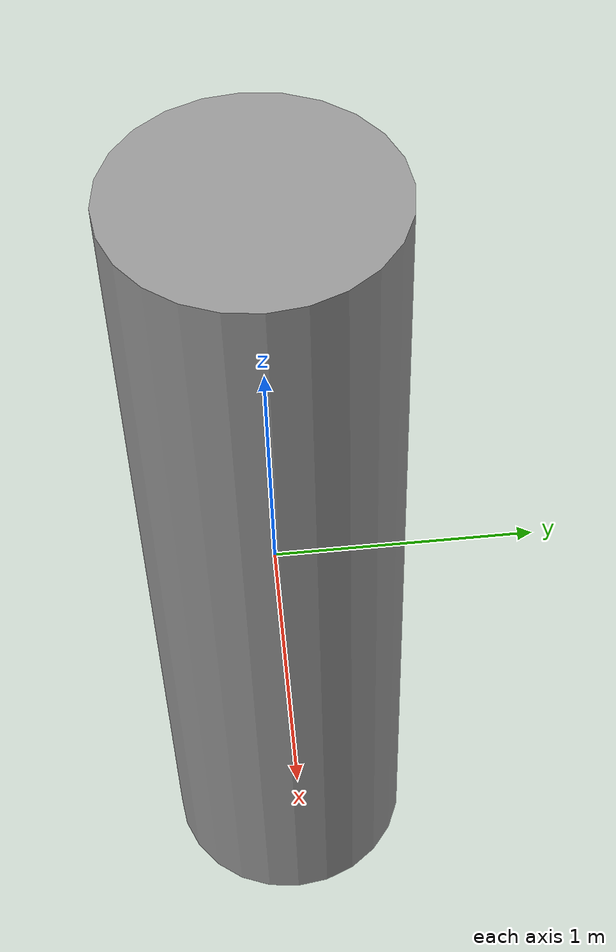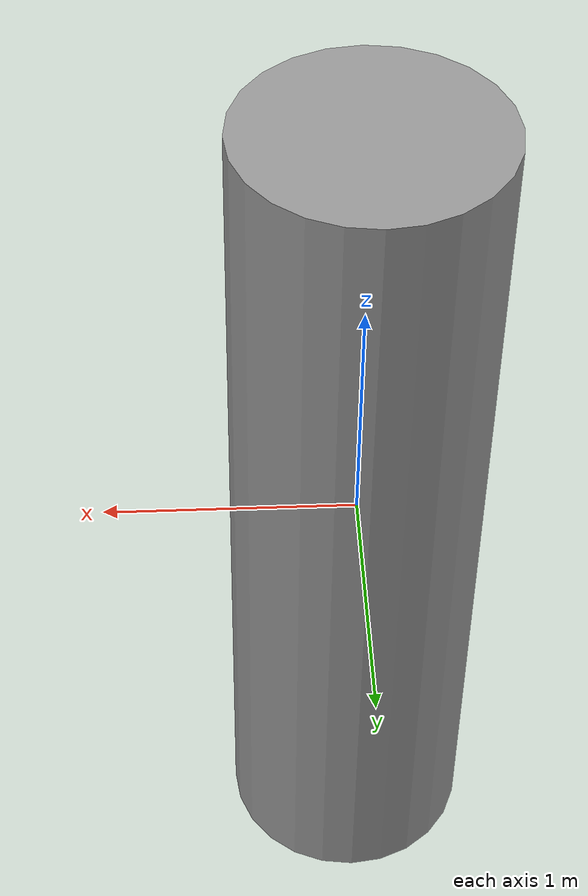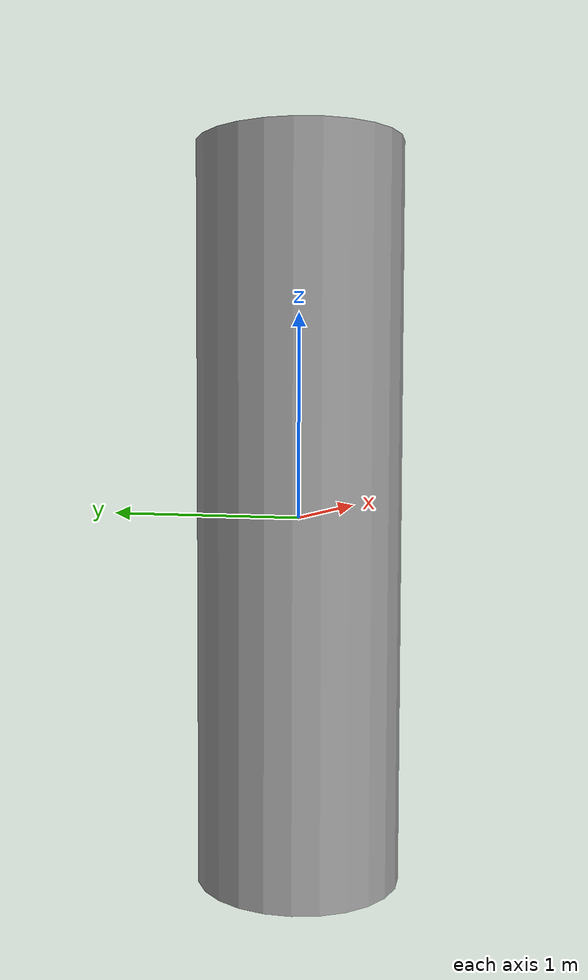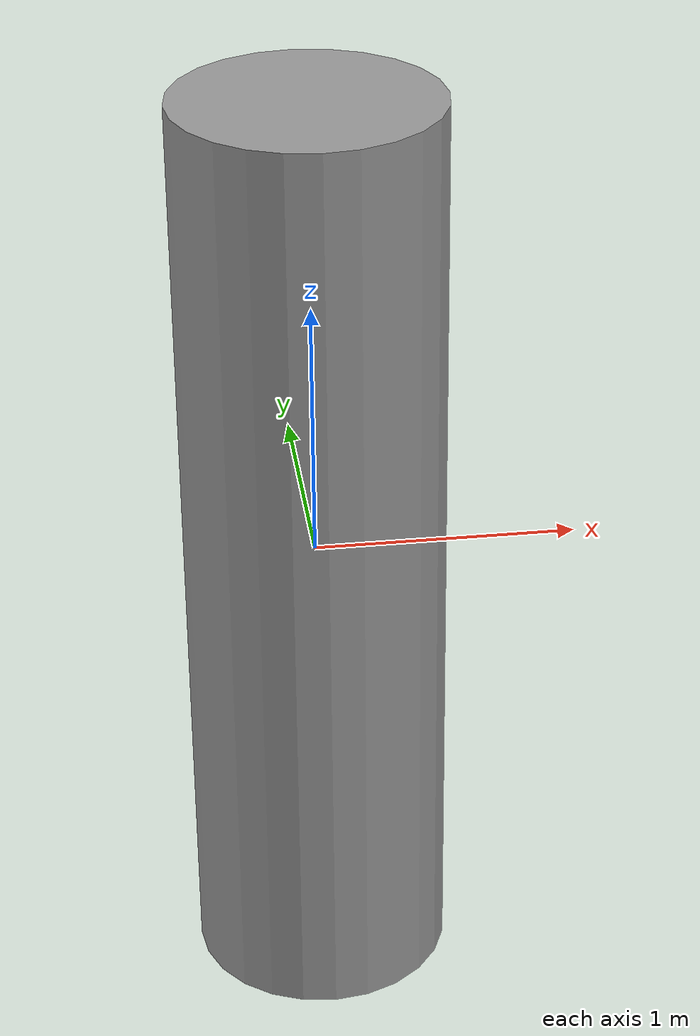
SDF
<?xml version='1.0'?>
<sdf version='1.7'>
  <model name='long_cylinder'>
    <link name='link_5'>
      <inertial>
        <mass>3.60259</mass>
        <inertia>
          <ixx>4.12154</ixx>
          <ixy>0</ixy>
          <ixz>0</ixz>
          <iyy>4.12154</iyy>
          <iyz>0</iyz>
          <izz>0.450323</izz>
        </inertia>
        <pose>0 0 0 0 -0 0</pose>
      </inertial>
      <pose>0 -2e-06 0 0 -0 0</pose>
      <visual name='visual'>
        <pose>0 0 0 0 -0 0</pose>
        <geometry>
          <cylinder>
            <radius>0.5</radius>
            <length>3.60259</length>
          </cylinder>
        </geometry>
        <material>
          <lighting>1</lighting>
          <script>
            <uri>file://media/materials/scripts/gazebo.material</uri>
            <name>Gazebo/Grey</name>
          </script>
          <shader type='pixel'/>
          <emissive>0 0 0 1</emissive>
        </material>
        <transparency>0</transparency>
        <cast_shadows>1</cast_shadows>
      </visual>
      <collision name='collision'>
        <laser_retro>0</laser_retro>
        <max_contacts>10</max_contacts>
        <pose>0 0 0 0 -0 0</pose>
        <geometry>
          <cylinder>
            <radius>0.5</radius>
            <length>3.60258</length>
          </cylinder>
        </geometry>
        <surface>
          <friction>
            <ode>
              <mu>1</mu>
              <mu2>1</mu2>
              <fdir1>0 0 0</fdir1>
              <slip1>0</slip1>
              <slip2>0</slip2>
            </ode>
            <torsional>
              <coefficient>1</coefficient>
              <patch_radius>0</patch_radius>
              <surface_radius>0</surface_radius>
              <use_patch_radius>1</use_patch_radius>
              <ode>
                <slip>0</slip>
              </ode>
            </torsional>
          </friction>
          <bounce>
            <restitution_coefficient>0</restitution_coefficient>
            <threshold>1e+06</threshold>
          </bounce>
          <contact>
            <collide_without_contact>0</collide_without_contact>
            <collide_without_contact_bitmask>1</collide_without_contact_bitmask>
            <collide_bitmask>1</collide_bitmask>
            <ode>
              <soft_cfm>0</soft_cfm>
              <soft_erp>0.2</soft_erp>
              <kp>1e+13</kp>
              <kd>1</kd>
              <max_vel>0.01</max_vel>
              <min_depth>0</min_depth>
            </ode>
            <bullet>
              <split_impulse>1</split_impulse>
              <split_impulse_penetration_threshold>-0.01</split_impulse_penetration_threshold>
              <soft_cfm>0</soft_cfm>
              <soft_erp>0.2</soft_erp>
              <kp>1e+13</kp>
              <kd>1</kd>
            </bullet>
          </contact>
        </surface>
      </collision>
    </link>
    <static>0</static>
    <allow_auto_disable>1</allow_auto_disable>
  </model>
</sdf>
